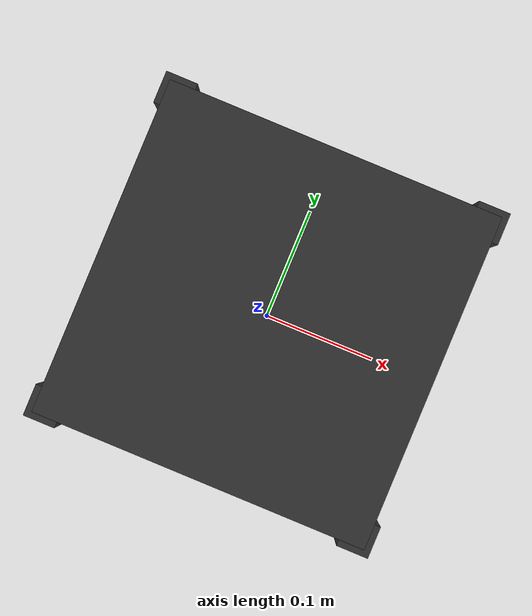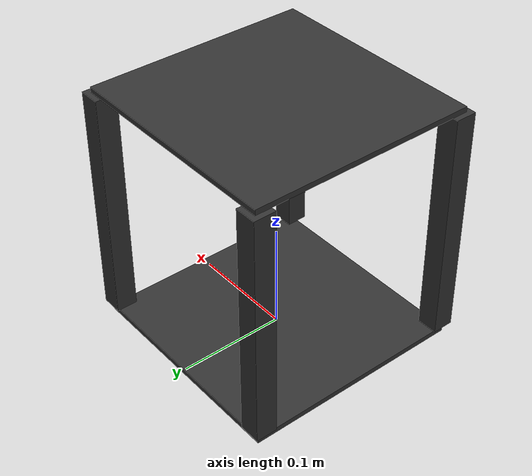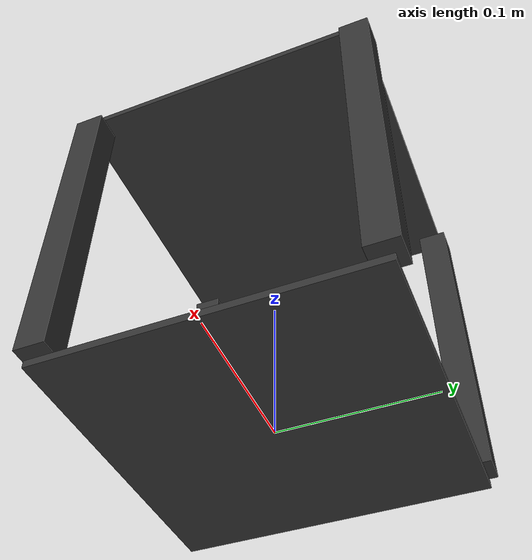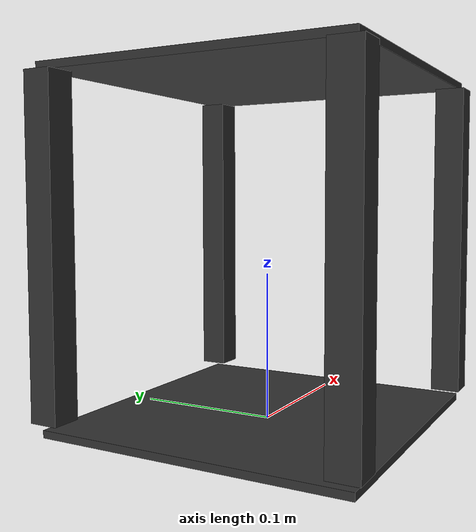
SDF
<?xml version="1.0" ?>
<sdf version="1.6">
  <model name="nix_tower">
    <pose frame=''>0 0 0 0 0 0</pose>

    <!-- Base -->
    <link name="base_link">
      <pose>0 0 0.0025 0 0 0</pose>
      <inertial>
        <mass>1</mass>
        <inertia>
          <ixx>0.003677</ixx>
          <iyy>0.003677</iyy>
          <izz>0.00735</izz>
          <ixy>0</ixy>
          <ixz>0</ixz>
          <iyz>0</iyz>
        </inertia>
      </inertial>
      <collision name="bl_collision">
        <geometry>
            <box>
              <size>.21 .21 .005</size>
            </box>
        </geometry>
      </collision>
      <visual name="bl_visual">
        <material>

                      <ambient>0.2 0.2 0.2 1</ambient>
                      <diffuse>0.2 0.2 0.2 1</diffuse>
                      <specular>0.1 0.1 0.1 1</specular>

                </material>
        <geometry>
            <box>
              <size>.21 .21 .005</size>
            </box>
        </geometry>
      </visual>
    </link>

    <!-- Tower -->
    <link name="stick_1">
      <pose>-0.1 -0.1 0.12 0 0 0</pose>
      <inertial>
        <mass>0.1</mass>
        <inertia>
          <ixx>0.000407</ixx>
          <iyy>0.000407</iyy>
          <izz>0.000006667</izz>
          <ixy>0</ixy>
          <ixz>0</ixz>
          <iyz>0</iyz>
        </inertia>
      </inertial>
      <collision name="stick_1_collision">
        <geometry>
            <box>
              <size>.02 .02 .22</size>
            </box>
        </geometry>
      </collision>
      <visual name="stick_1_visual">
        <material>

                      <ambient>0.2 0.2 0.2 1</ambient>
                      <diffuse>0.2 0.2 0.2 1</diffuse>
                      <specular>0.1 0.1 0.1 1</specular>

                </material>
        <geometry>
            <box>
              <size>.02 .02 .22</size>
            </box>
        </geometry>
      </visual>
    </link>
    <joint name="stick_1_joint" type="revolute">
      <child>stick_1</child>
      <parent>base_link</parent>

      <pose>-0.1 -0.1 0.12 0 0 0</pose>
       <axis>
        <limit>
          <lower>-0.001</lower>
          <upper>0.001</upper>
        </limit>
        <xyz>1 0 0</xyz>
        <dynamics>
          <spring_reference>0</spring_reference>
          <spring_stiffness>0</spring_stiffness>
          <damping>0.5</damping>
          <friction>4</friction>
        </dynamics>
      </axis>
    </joint>

    <link name="stick_2">
      <pose>0.1 -0.1 0.12 0 0 0</pose>
      <inertial>
        <mass>0.1</mass>
        <inertia>
          <ixx>0.000407</ixx>
          <iyy>0.000407</iyy>
          <izz>0.000006667</izz>
          <ixy>0</ixy>
          <ixz>0</ixz>
          <iyz>0</iyz>
        </inertia>
      </inertial>
      <collision name="stick_2_collision">
        <geometry>
            <box>
              <size>.02 .02 .22</size>
            </box>
        </geometry>
      </collision>
      <visual name="stick_2_visual">
        <material>

                      <ambient>0.2 0.2 0.2 1</ambient>
                      <diffuse>0.2 0.2 0.2 1</diffuse>
                      <specular>0.1 0.1 0.1 1</specular>

                </material>
        <geometry>
            <box>
              <size>.02 .02 .22</size>
            </box>
        </geometry>
      </visual>
    </link>
    <joint name="stick_2_joint" type="revolute">
      <child>stick_2</child>
      <parent>base_link</parent>

      <pose>0.1 -0.1 0.12 0 0 0</pose>
       <axis>
        <limit>
          <lower>-0.001</lower>
          <upper>0.001</upper>
        </limit>
        <xyz>1 0 0</xyz>
        <dynamics>
          <spring_reference>0</spring_reference>
          <spring_stiffness>0</spring_stiffness>
          <damping>0.5</damping>
          <friction>4</friction>
        </dynamics>
      </axis>
    </joint>

    <link name="stick_3">
      <pose>-0.1 0.1 0.12 0 0 0</pose>
      <inertial>
        <mass>0.1</mass>
        <inertia>
          <ixx>0.000407</ixx>
          <iyy>0.000407</iyy>
          <izz>0.000006667</izz>
          <ixy>0</ixy>
          <ixz>0</ixz>
          <iyz>0</iyz>
        </inertia>
      </inertial>
      <collision name="stick_3_collision">
        <geometry>
            <box>
              <size>.02 .02 .22</size>
            </box>
        </geometry>
      </collision>
      <visual name="stick_3_visual">
        <material>

                      <ambient>0.2 0.2 0.2 1</ambient>
                      <diffuse>0.2 0.2 0.2 1</diffuse>
                      <specular>0.1 0.1 0.1 1</specular>

                </material>
        <geometry>
            <box>
              <size>.02 .02 .22</size>
            </box>
        </geometry>
      </visual>
    </link>
    <joint name="stick_3_joint" type="revolute">
      <child>stick_3</child>
      <parent>base_link</parent>

      <pose>-0.1 0.1 0.12 0 0 0</pose>
       <axis>
        <limit>
          <lower>-0.001</lower>
          <upper>0.001</upper>
        </limit>
        <xyz>1 0 0</xyz>
        <dynamics>
          <spring_reference>0</spring_reference>
          <spring_stiffness>0</spring_stiffness>
          <damping>0.5</damping>
          <friction>4</friction>
        </dynamics>
      </axis>
    </joint>

    <link name="stick_4">
      <pose>0.1 0.1 0.12 0 0 0</pose>
      <inertial>
        <mass>0.1</mass>
        <inertia>
          <ixx>0.000407</ixx>
          <iyy>0.000407</iyy>
          <izz>0.000006667</izz>
          <ixy>0</ixy>
          <ixz>0</ixz>
          <iyz>0</iyz>
        </inertia>
      </inertial>
      <collision name="stick_4_collision">
        <geometry>
            <box>
              <size>.02 .02 .22</size>
            </box>
        </geometry>
      </collision>
      <visual name="stick_4_visual">
        <material>

                      <ambient>0.2 0.2 0.2 1</ambient>
                      <diffuse>0.2 0.2 0.2 1</diffuse>
                      <specular>0.1 0.1 0.1 1</specular>

                </material>
        <geometry>
            <box>
              <size>.02 .02 .22</size>
            </box>
        </geometry>
      </visual>
    </link>
    <joint name="stick_4_joint" type="revolute">
      <child>stick_4</child>
      <parent>base_link</parent>

      <pose>-0.1 -0.1 0.12 0 0 0</pose>
       <axis>
        <limit>
          <lower>-0.001</lower>
          <upper>0.001</upper>
        </limit>
        <xyz>1 0 0</xyz>
        <dynamics>
          <spring_reference>0</spring_reference>
          <spring_stiffness>0</spring_stiffness>
          <damping>0.5</damping>
          <friction>4</friction>
        </dynamics>
      </axis>
    </joint>

    <link name="plate">
      <pose>0 0 0.2325 0 0 0</pose>
      <inertial>
        <mass>0.1</mass>
        <inertia>
          <ixx>0.0024</ixx>
          <iyy>0.0024</iyy>
          <izz>0.0048</izz>
          <ixy>0</ixy>
          <ixz>0</ixz>
          <iyz>0</iyz>
        </inertia>
      </inertial>
      <collision name="plate_collision">
        <geometry>
            <box>
              <size>.21 .21 .005</size>
            </box>
        </geometry>
      </collision>
      <visual name="plate_visual">
        <material>

                      <ambient>0.2 0.2 0.2 1</ambient>
                      <diffuse>0.2 0.2 0.2 1</diffuse>
                      <specular>0.1 0.1 0.1 1</specular>

                </material>
        <geometry>
            <box>
              <size>.21 .21 .005</size>
            </box>
        </geometry>
      </visual>
    </link>
    <joint name="plate_joint" type="fixed">
      <child>plate</child>
      <parent>base_link</parent>
      <pose>0 0 0 0 0 0</pose>
    </joint>
  </model>
</sdf>
